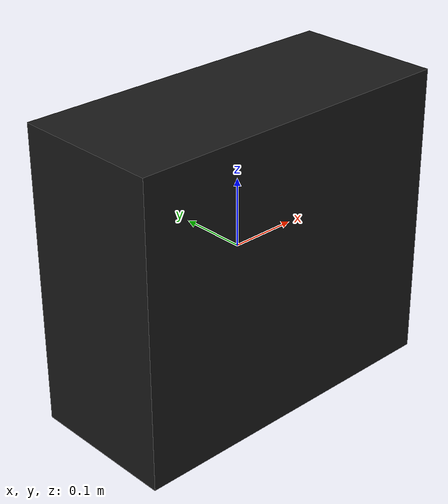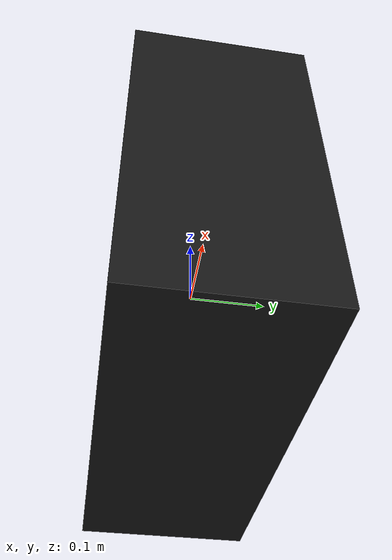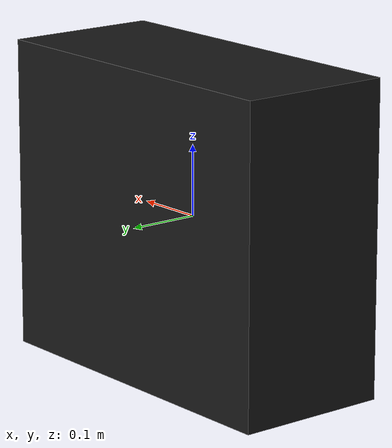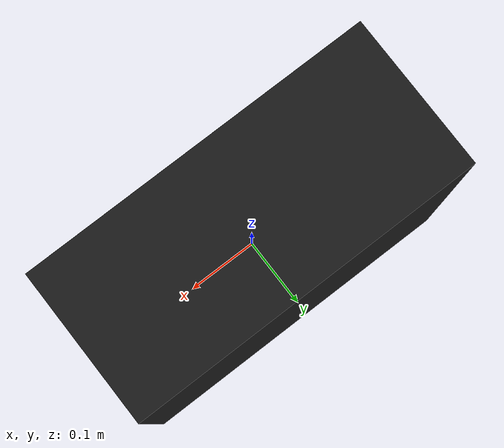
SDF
<?xml version="1.0" ?>
<sdf version="1.6">
  <model name="clf_computer">
    <static>true</static>
    <link name="link">
      <collision name="collision">
        <geometry>
          <box>
            <size>0.5 0.5 0.5</size>
          </box>
        </geometry>
      </collision>
      <visual name="visual">
        <material>
          <ambient>0.1 0.1 0.1 1.0</ambient>
          <diffuse>0.1 0.1 0.1 1.0</diffuse>
          <specular>0 0 0 0</specular>
          <emissive>0 0 0 1</emissive>
        </material>
        <geometry>
          <box>
            <size>0.5 0.22 0.44</size>
          </box>
        </geometry>
      </visual>
    </link>
  </model>
</sdf>
